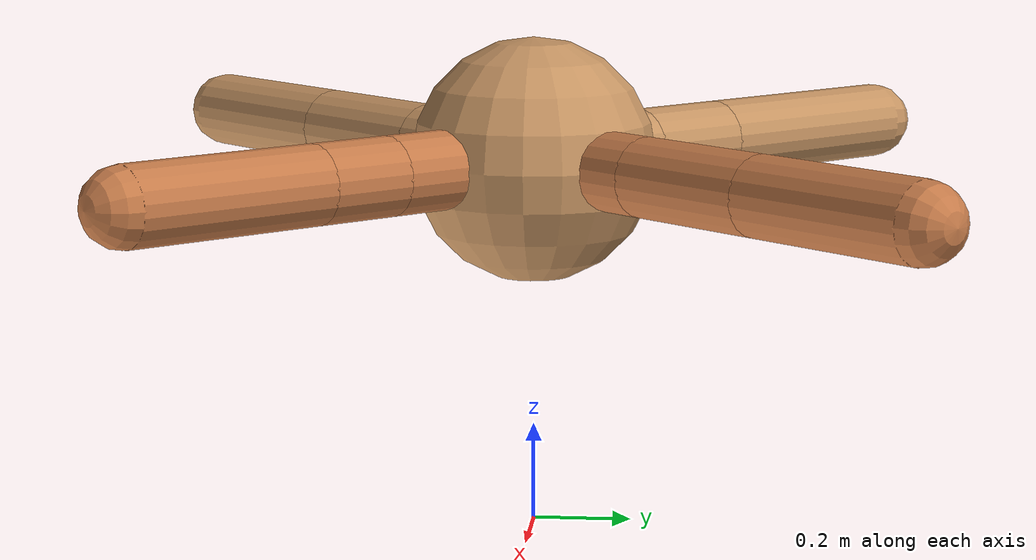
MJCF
<mujoco model="ant">
  <compiler angle="degree" coordinate="local" inertiafromgeom="true" />
  <option integrator="RK4" timestep="0.01" />
  <custom>
    <numeric data="0.0 0.0 0.55 1.0 0.0 0.0 0.0 0.0 1.0 0.0 -1.0 0.0 -1.0 0.0 1.0" name="init_qpos" />
  </custom>
  <default>
    <joint armature="1" damping="1" limited="true" />
    <geom conaffinity="0" condim="3" density="5.0" friction="1.5 0.1 0.1" margin="0.01" rgba="0.8 0.6 0.4 1" />
  </default>
  <worldbody>
    <body name="torso" pos="0 0 0.75">
      <geom name="torso_geom" pos="0 0 0" size="0.25" type="sphere" />

      <body name="front_left_leg" pos="0 0 0">
        <geom fromto="0.0 0.0 0.0 0.23726260750275807 0.23726260750275807 0.0" name="aux_1_geom" size="0.08" type="capsule" rgba=".8 .5 .3 1" />
        <body name="aux_1" pos="0.23726260750275807 0.23726260750275807 0.0">
          <joint axis="0 0 1" name="hip_1" pos="0.0 0.0 0.0" range="-40 40" type="hinge" />
          <geom fromto="0.0 0.0 0.0 0.22379226306267042 0.22379226306267042 0.0" name="left_leg_geom" size="0.08" type="capsule" rgba=".8 .5 .3 1" />
          <body pos="0.22379226306267042 0.22379226306267042 0.0" name="front_left_foot">
            <joint axis="-1 1 0" name="ankle_1" pos="0.0 0.0 0.0" range="30 100" type="hinge" />
            <geom fromto="0.0 0.0 0.0 0.29453816065035693 0.29453816065035693 0.0" name="left_ankle_geom" size="0.08" type="capsule" rgba=".8 .5 .3 1" />
          </body>
        </body>
      </body>
      <body name="front_right_leg" pos="0 0 0">
        <geom fromto="0.0 0.0 0.0 -0.20665975977234288 0.20665975977234288 0.0" name="aux_2_geom" size="0.08" type="capsule" />
        <body name="aux_2" pos="-0.20665975977234288 0.20665975977234288 0.0">
          <joint axis="0 0 1" name="hip_2" pos="0.0 0.0 0.0" range="-40 40" type="hinge" />
          <geom fromto="0.0 0.0 0.0 -0.15425380588962914 0.15425380588962914 0.0" name="right_leg_geom" size="0.08" type="capsule" />
          <body pos="-0.15425380588962914 0.15425380588962914 0.0" name="front_right_foot">
            <joint axis="1 1 0" name="ankle_2" pos="0.0 0.0 0.0" range="-100 -30" type="hinge" />
            <geom fromto="0.0 0.0 0.0 -0.3412656372829746 0.3412656372829746 0.0" name="right_ankle_geom" size="0.08" type="capsule" />
          </body>
        </body>
      </body>
      <body name="left_back_leg" pos="0 0 0">
        <geom fromto="0.0 0.0 0.0 -0.24782479261818466 -0.24782479261818466 0.0" name="aux_3_geom" size="0.08" type="capsule" />
        <body name="aux_3" pos="-0.24782479261818466 -0.24782479261818466 0.0">
          <joint axis="0 0 1" name="hip_3" pos="0.0 0.0 0.0" range="-40 40" type="hinge" />
          <geom fromto="0.0 0.0 0.0 -0.2377431214836702 -0.2377431214836702 0.0" name="back_leg_geom" size="0.08" type="capsule" />
          <body pos="-0.2377431214836702 -0.2377431214836702 0.0" name="left_back_foot">
            <joint axis="-1 1 0" name="ankle_3" pos="0.0 0.0 0.0" range="-100 -30" type="hinge" />
            <geom fromto="0.0 0.0 0.0 -0.29237184647058373 -0.29237184647058373 0.0" name="third_ankle_geom" size="0.08" type="capsule" />
          </body>
        </body>
      </body>
      <body name="right_back_leg" pos="0 0 0">
        <geom fromto="0.0 0.0 0.0 0.26175867339037495 -0.26175867339037495 0.0" name="aux_4_geom" size="0.08" type="capsule" rgba=".8 .5 .3 1" />
        <body name="aux_4" pos="0.26175867339037495 -0.26175867339037495 0.0">
          <joint axis="0 0 1" name="hip_4" pos="0.0 0.0 0.0" range="-40 40" type="hinge" />
          <geom fromto="0.0 0.0 0.0 0.12507714967024194 -0.12507714967024194 0.0" name="rightback_leg_geom" size="0.08" type="capsule" rgba=".8 .5 .3 1" />
          <body pos="0.12507714967024194 -0.12507714967024194 0.0" name="right_back_foot">
            <joint axis="1 1 0" name="ankle_4" pos="0.0 0.0 0.0" range="30 100" type="hinge" />
            <geom fromto="0.0 0.0 0.0 0.3080060734158078 -0.3080060734158078 0.0" name="fourth_ankle_geom" size="0.08" type="capsule" rgba=".8 .5 .3 1" />
          </body>
        </body>
      </body>
    </body>
  </worldbody>
  <actuator>
    <motor ctrllimited="true" ctrlrange="-1.0 1.0" joint="hip_4" gear="150" />
    <motor ctrllimited="true" ctrlrange="-1.0 1.0" joint="ankle_4" gear="150" />
    <motor ctrllimited="true" ctrlrange="-1.0 1.0" joint="hip_1" gear="150" />
    <motor ctrllimited="true" ctrlrange="-1.0 1.0" joint="ankle_1" gear="150" />
    <motor ctrllimited="true" ctrlrange="-1.0 1.0" joint="hip_2" gear="150" />
    <motor ctrllimited="true" ctrlrange="-1.0 1.0" joint="ankle_2" gear="150" />
    <motor ctrllimited="true" ctrlrange="-1.0 1.0" joint="hip_3" gear="150" />
    <motor ctrllimited="true" ctrlrange="-1.0 1.0" joint="ankle_3" gear="150" />
  </actuator>
</mujoco>
